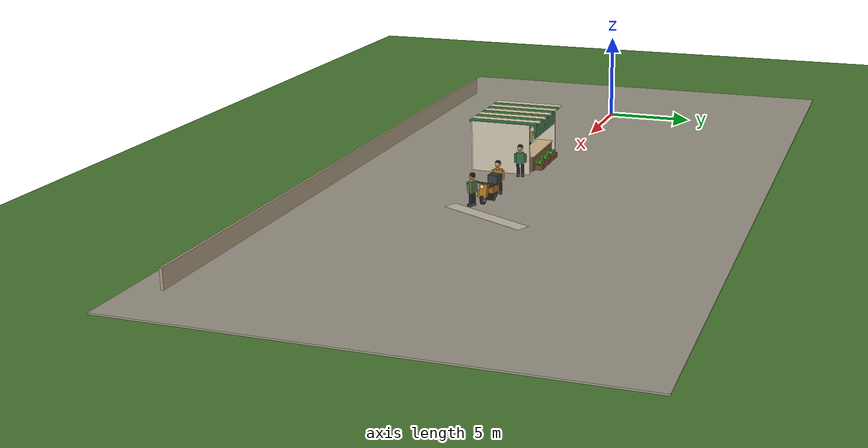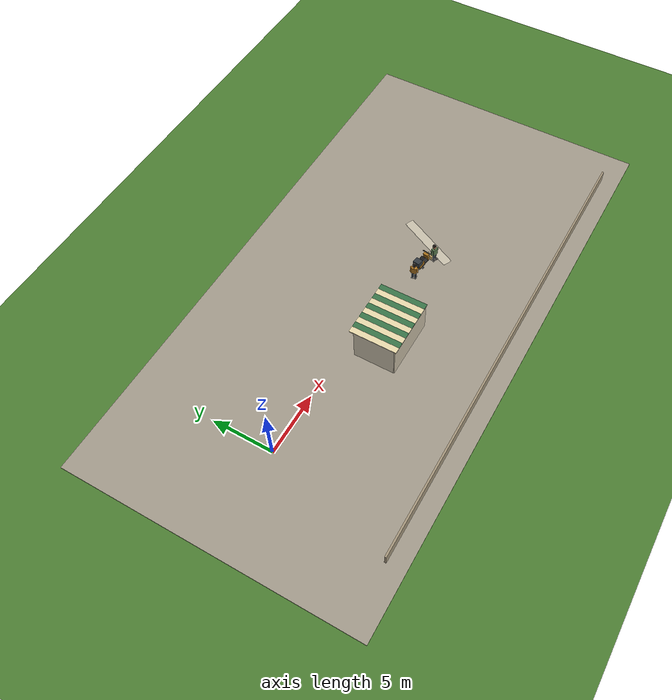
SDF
<sdf version="1.10">
 <world name="swan_town">
  <model name="ground_plane">
   <pose>-14 30 -0.025 0 0 0</pose>
   <static>true</static>
   <link name="link">
    <collision name="collision">
     <geometry><plane><normal>0 0 1</normal><size>100 100</size></plane></geometry>
    </collision>
    <visual name="visual">
     <geometry><plane><normal>0 0 1</normal><size>100 100</size></plane></geometry>
     <material><ambient>0.3 0.5 0.2 1</ambient><diffuse>0.3 0.5 0.2 1</diffuse></material>
    </visual>
   </link>
  </model>
  <model name="ground">
   <static>true</static>
   <pose>15 0 -0.1 0 0 0</pose>
   <link name="body">
    <collision name="box_collision"><geometry><box><size>46 24 0.2</size></box></geometry></collision>
    <visual name="box_visual">
     <geometry><box><size>46 24 0.2</size></box></geometry>
     <material><ambient>0.64 0.61 0.55 1</ambient><diffuse>0.64 0.61 0.55 1</diffuse></material>
    </visual>
   </link>
  </model>
  <model name="market_paving_47">
   <static>true</static>
   <pose>21.75 -0.77782 0.002 0 0 -0.45458</pose>
   <link name="body">
    <visual name="box_visual">
     <geometry><box><size>0.75 5.2 0.004</size></box></geometry>
     <material><ambient>0.79 0.76 0.68 1</ambient><diffuse>0.79 0.76 0.68 1</diffuse></material>
    </visual>
   </link>
  </model>
  <model name="boundary_-1">
   <static>true</static>
   <pose>16 -10.5 0.5 0 0 0</pose>
   <link name="body">
    <collision name="box_collision"><geometry><box><size>38 0.15 1</size></box></geometry></collision>
    <visual name="box_visual">
     <geometry><box><size>38 0.15 1</size></box></geometry>
     <material><ambient>0.65 0.59 0.49 1</ambient><diffuse>0.65 0.59 0.49 1</diffuse></material>
    </visual>
   </link>
  </model>
  <model name="stall_05">
   <static>true</static>
   <pose>12 -2.5575 0 0 0 0</pose>
   <link name="body">
    <collision name="rear_collision">
     <pose>0 -1.65 1.4 0 0 0</pose>
     <geometry><box><size>4.8 0.15 2.8</size></box></geometry>
    </collision>
    <visual name="rear_visual">
     <pose>0 -1.65 1.4 0 0 0</pose>
     <geometry><box><size>4.8 0.15 2.8</size></box></geometry>
     <material><ambient>0.78 0.74 0.65 1</ambient><diffuse>0.78 0.74 0.65 1</diffuse></material>
    </visual>
    <collision name="side_-2.35_collision">
     <pose>-2.35 0 1.4 0 0 0</pose>
     <geometry><box><size>0.12 3.3 2.8</size></box></geometry>
    </collision>
    <visual name="side_-2.35_visual">
     <pose>-2.35 0 1.4 0 0 0</pose>
     <geometry><box><size>0.12 3.3 2.8</size></box></geometry>
     <material><ambient>0.81 0.77 0.69 1</ambient><diffuse>0.81 0.77 0.69 1</diffuse></material>
    </visual>
    <collision name="side_2.35_collision">
     <pose>2.35 0 1.4 0 0 0</pose>
     <geometry><box><size>0.12 3.3 2.8</size></box></geometry>
    </collision>
    <visual name="side_2.35_visual">
     <pose>2.35 0 1.4 0 0 0</pose>
     <geometry><box><size>0.12 3.3 2.8</size></box></geometry>
     <material><ambient>0.81 0.77 0.69 1</ambient><diffuse>0.81 0.77 0.69 1</diffuse></material>
    </visual>
    <collision name="counter_collision">
     <pose>0 1.22 0.4 0 0 0</pose>
     <geometry><box><size>3.5 0.85 0.8</size></box></geometry>
    </collision>
    <visual name="counter_visual">
     <pose>0 1.22 0.4 0 0 0</pose>
     <geometry><box><size>3.5 0.85 0.8</size></box></geometry>
     <material><ambient>0.47 0.32 0.21 1</ambient><diffuse>0.47 0.32 0.21 1</diffuse></material>
    </visual>
    <collision name="counter_top_collision">
     <pose>0 1.22 0.83 0 0 0</pose>
     <geometry><box><size>3.6 0.95 0.06</size></box></geometry>
    </collision>
    <visual name="counter_top_visual">
     <pose>0 1.22 0.83 0 0 0</pose>
     <geometry><box><size>3.6 0.95 0.06</size></box></geometry>
     <material><ambient>0.86 0.77 0.59 1</ambient><diffuse>0.86 0.77 0.59 1</diffuse></material>
    </visual>
    <collision name="awning_0_collision">
     <pose>-2.16 0.1 2.78 0 0 0</pose>
     <geometry><box><size>0.48 3.85 0.1</size></box></geometry>
    </collision>
    <visual name="awning_0_visual">
     <pose>-2.16 0.1 2.78 0 0 0</pose>
     <geometry><box><size>0.48 3.85 0.1</size></box></geometry>
     <material><ambient>0.92 0.86 0.68 1</ambient><diffuse>0.92 0.86 0.68 1</diffuse></material>
    </visual>
    <collision name="awning_1_collision">
     <pose>-1.68 0.1 2.78 0 0 0</pose>
     <geometry><box><size>0.48 3.85 0.1</size></box></geometry>
    </collision>
    <visual name="awning_1_visual">
     <pose>-1.68 0.1 2.78 0 0 0</pose>
     <geometry><box><size>0.48 3.85 0.1</size></box></geometry>
     <material><ambient>0.23 0.46 0.29 1</ambient><diffuse>0.23 0.46 0.29 1</diffuse></material>
    </visual>
    <collision name="awning_2_collision">
     <pose>-1.2 0.1 2.78 0 0 0</pose>
     <geometry><box><size>0.48 3.85 0.1</size></box></geometry>
    </collision>
    <visual name="awning_2_visual">
     <pose>-1.2 0.1 2.78 0 0 0</pose>
     <geometry><box><size>0.48 3.85 0.1</size></box></geometry>
     <material><ambient>0.92 0.86 0.68 1</ambient><diffuse>0.92 0.86 0.68 1</diffuse></material>
    </visual>
    <collision name="awning_3_collision">
     <pose>-0.72 0.1 2.78 0 0 0</pose>
     <geometry><box><size>0.48 3.85 0.1</size></box></geometry>
    </collision>
    <visual name="awning_3_visual">
     <pose>-0.72 0.1 2.78 0 0 0</pose>
     <geometry><box><size>0.48 3.85 0.1</size></box></geometry>
     <material><ambient>0.23 0.46 0.29 1</ambient><diffuse>0.23 0.46 0.29 1</diffuse></material>
    </visual>
    <collision name="awning_4_collision">
     <pose>-0.24 0.1 2.78 0 0 0</pose>
     <geometry><box><size>0.48 3.85 0.1</size></box></geometry>
    </collision>
    <visual name="awning_4_visual">
     <pose>-0.24 0.1 2.78 0 0 0</pose>
     <geometry><box><size>0.48 3.85 0.1</size></box></geometry>
     <material><ambient>0.92 0.86 0.68 1</ambient><diffuse>0.92 0.86 0.68 1</diffuse></material>
    </visual>
    <collision name="awning_5_collision">
     <pose>0.24 0.1 2.78 0 0 0</pose>
     <geometry><box><size>0.48 3.85 0.1</size></box></geometry>
    </collision>
    <visual name="awning_5_visual">
     <pose>0.24 0.1 2.78 0 0 0</pose>
     <geometry><box><size>0.48 3.85 0.1</size></box></geometry>
     <material><ambient>0.23 0.46 0.29 1</ambient><diffuse>0.23 0.46 0.29 1</diffuse></material>
    </visual>
    <collision name="awning_6_collision">
     <pose>0.72 0.1 2.78 0 0 0</pose>
     <geometry><box><size>0.48 3.85 0.1</size></box></geometry>
    </collision>
    <visual name="awning_6_visual">
     <pose>0.72 0.1 2.78 0 0 0</pose>
     <geometry><box><size>0.48 3.85 0.1</size></box></geometry>
     <material><ambient>0.92 0.86 0.68 1</ambient><diffuse>0.92 0.86 0.68 1</diffuse></material>
    </visual>
    <collision name="awning_7_collision">
     <pose>1.2 0.1 2.78 0 0 0</pose>
     <geometry><box><size>0.48 3.85 0.1</size></box></geometry>
    </collision>
    <visual name="awning_7_visual">
     <pose>1.2 0.1 2.78 0 0 0</pose>
     <geometry><box><size>0.48 3.85 0.1</size></box></geometry>
     <material><ambient>0.23 0.46 0.29 1</ambient><diffuse>0.23 0.46 0.29 1</diffuse></material>
    </visual>
    <collision name="awning_8_collision">
     <pose>1.68 0.1 2.78 0 0 0</pose>
     <geometry><box><size>0.48 3.85 0.1</size></box></geometry>
    </collision>
    <visual name="awning_8_visual">
     <pose>1.68 0.1 2.78 0 0 0</pose>
     <geometry><box><size>0.48 3.85 0.1</size></box></geometry>
     <material><ambient>0.92 0.86 0.68 1</ambient><diffuse>0.92 0.86 0.68 1</diffuse></material>
    </visual>
    <collision name="awning_9_collision">
     <pose>2.16 0.1 2.78 0 0 0</pose>
     <geometry><box><size>0.48 3.85 0.1</size></box></geometry>
    </collision>
    <visual name="awning_9_visual">
     <pose>2.16 0.1 2.78 0 0 0</pose>
     <geometry><box><size>0.48 3.85 0.1</size></box></geometry>
     <material><ambient>0.23 0.46 0.29 1</ambient><diffuse>0.23 0.46 0.29 1</diffuse></material>
    </visual>
    <collision name="crate_-1_collision">
     <pose>-1.04 1.77 0.15 0 0 0</pose>
     <geometry><box><size>0.78 0.6 0.3</size></box></geometry>
    </collision>
    <visual name="crate_-1_visual">
     <pose>-1.04 1.77 0.15 0 0 0</pose>
     <geometry><box><size>0.78 0.6 0.3</size></box></geometry>
     <material><ambient>0.4 0.28 0.15 1</ambient><diffuse>0.4 0.28 0.15 1</diffuse></material>
    </visual>
    <visual name="produce_-1_0_visual">
     <pose>-1.25 1.66 0.39 0 0 0</pose>
     <geometry><sphere><radius>0.105</radius></sphere></geometry>
     <material><ambient>0.31 0.58 0.16 1</ambient><diffuse>0.31 0.58 0.16 1</diffuse></material>
    </visual>
    <visual name="produce_-1_1_visual">
     <pose>-1.04 1.66 0.39 0 0 0</pose>
     <geometry><sphere><radius>0.105</radius></sphere></geometry>
     <material><ambient>0.31 0.58 0.16 1</ambient><diffuse>0.31 0.58 0.16 1</diffuse></material>
    </visual>
    <visual name="produce_-1_2_visual">
     <pose>-0.83 1.66 0.39 0 0 0</pose>
     <geometry><sphere><radius>0.105</radius></sphere></geometry>
     <material><ambient>0.31 0.58 0.16 1</ambient><diffuse>0.31 0.58 0.16 1</diffuse></material>
    </visual>
    <visual name="produce_-1_3_visual">
     <pose>-1.25 1.88 0.39 0 0 0</pose>
     <geometry><sphere><radius>0.105</radius></sphere></geometry>
     <material><ambient>0.31 0.58 0.16 1</ambient><diffuse>0.31 0.58 0.16 1</diffuse></material>
    </visual>
    <visual name="produce_-1_4_visual">
     <pose>-1.04 1.88 0.39 0 0 0</pose>
     <geometry><sphere><radius>0.105</radius></sphere></geometry>
     <material><ambient>0.31 0.58 0.16 1</ambient><diffuse>0.31 0.58 0.16 1</diffuse></material>
    </visual>
    <visual name="produce_-1_5_visual">
     <pose>-0.83 1.88 0.39 0 0 0</pose>
     <geometry><sphere><radius>0.105</radius></sphere></geometry>
     <material><ambient>0.31 0.58 0.16 1</ambient><diffuse>0.31 0.58 0.16 1</diffuse></material>
    </visual>
    <collision name="crate_0_collision">
     <pose>0 1.77 0.15 0 0 0</pose>
     <geometry><box><size>0.78 0.6 0.3</size></box></geometry>
    </collision>
    <visual name="crate_0_visual">
     <pose>0 1.77 0.15 0 0 0</pose>
     <geometry><box><size>0.78 0.6 0.3</size></box></geometry>
     <material><ambient>0.4 0.28 0.15 1</ambient><diffuse>0.4 0.28 0.15 1</diffuse></material>
    </visual>
    <visual name="produce_0_0_visual">
     <pose>-0.21 1.66 0.39 0 0 0</pose>
     <geometry><sphere><radius>0.105</radius></sphere></geometry>
     <material><ambient>0.31 0.58 0.16 1</ambient><diffuse>0.31 0.58 0.16 1</diffuse></material>
    </visual>
    <visual name="produce_0_1_visual">
     <pose>0 1.66 0.39 0 0 0</pose>
     <geometry><sphere><radius>0.105</radius></sphere></geometry>
     <material><ambient>0.31 0.58 0.16 1</ambient><diffuse>0.31 0.58 0.16 1</diffuse></material>
    </visual>
    <visual name="produce_0_2_visual">
     <pose>0.21 1.66 0.39 0 0 0</pose>
     <geometry><sphere><radius>0.105</radius></sphere></geometry>
     <material><ambient>0.31 0.58 0.16 1</ambient><diffuse>0.31 0.58 0.16 1</diffuse></material>
    </visual>
    <visual name="produce_0_3_visual">
     <pose>-0.21 1.88 0.39 0 0 0</pose>
     <geometry><sphere><radius>0.105</radius></sphere></geometry>
     <material><ambient>0.31 0.58 0.16 1</ambient><diffuse>0.31 0.58 0.16 1</diffuse></material>
    </visual>
    <visual name="produce_0_4_visual">
     <pose>0 1.88 0.39 0 0 0</pose>
     <geometry><sphere><radius>0.105</radius></sphere></geometry>
     <material><ambient>0.31 0.58 0.16 1</ambient><diffuse>0.31 0.58 0.16 1</diffuse></material>
    </visual>
    <visual name="produce_0_5_visual">
     <pose>0.21 1.88 0.39 0 0 0</pose>
     <geometry><sphere><radius>0.105</radius></sphere></geometry>
     <material><ambient>0.31 0.58 0.16 1</ambient><diffuse>0.31 0.58 0.16 1</diffuse></material>
    </visual>
    <collision name="crate_1_collision">
     <pose>1.04 1.77 0.15 0 0 0</pose>
     <geometry><box><size>0.78 0.6 0.3</size></box></geometry>
    </collision>
    <visual name="crate_1_visual">
     <pose>1.04 1.77 0.15 0 0 0</pose>
     <geometry><box><size>0.78 0.6 0.3</size></box></geometry>
     <material><ambient>0.4 0.28 0.15 1</ambient><diffuse>0.4 0.28 0.15 1</diffuse></material>
    </visual>
    <visual name="produce_1_0_visual">
     <pose>0.83 1.66 0.39 0 0 0</pose>
     <geometry><sphere><radius>0.105</radius></sphere></geometry>
     <material><ambient>0.31 0.58 0.16 1</ambient><diffuse>0.31 0.58 0.16 1</diffuse></material>
    </visual>
    <visual name="produce_1_1_visual">
     <pose>1.04 1.66 0.39 0 0 0</pose>
     <geometry><sphere><radius>0.105</radius></sphere></geometry>
     <material><ambient>0.31 0.58 0.16 1</ambient><diffuse>0.31 0.58 0.16 1</diffuse></material>
    </visual>
    <visual name="produce_1_2_visual">
     <pose>1.25 1.66 0.39 0 0 0</pose>
     <geometry><sphere><radius>0.105</radius></sphere></geometry>
     <material><ambient>0.31 0.58 0.16 1</ambient><diffuse>0.31 0.58 0.16 1</diffuse></material>
    </visual>
    <visual name="produce_1_3_visual">
     <pose>0.83 1.88 0.39 0 0 0</pose>
     <geometry><sphere><radius>0.105</radius></sphere></geometry>
     <material><ambient>0.31 0.58 0.16 1</ambient><diffuse>0.31 0.58 0.16 1</diffuse></material>
    </visual>
    <visual name="produce_1_4_visual">
     <pose>1.04 1.88 0.39 0 0 0</pose>
     <geometry><sphere><radius>0.105</radius></sphere></geometry>
     <material><ambient>0.31 0.58 0.16 1</ambient><diffuse>0.31 0.58 0.16 1</diffuse></material>
    </visual>
    <visual name="produce_1_5_visual">
     <pose>1.25 1.88 0.39 0 0 0</pose>
     <geometry><sphere><radius>0.105</radius></sphere></geometry>
     <material><ambient>0.31 0.58 0.16 1</ambient><diffuse>0.31 0.58 0.16 1</diffuse></material>
    </visual>
   </link>
  </model>
  <model name="signboard_5">
   <static>true</static>
   <pose>12 -0.79747 2.24 0 0 0</pose>
   <link name="body">
    <collision name="box_collision"><geometry><box><size>3.65 0.08 0.72</size></box></geometry></collision>
    <visual name="box_visual">
     <geometry><box><size>3.65 0.08 0.72</size></box></geometry>
     <material><ambient>0.23 0.46 0.29 1</ambient><diffuse>0.23 0.46 0.29 1</diffuse></material>
    </visual>
   </link>
  </model>
  <model name="sign_shop_5">
   <static>true</static>
   <pose>12 -0.74947 2.24 0 0 -3.14158530718</pose>
   <link name="body">
    <visual name="top_visual">
     <pose>0 -0.003 0.32062 0 0 0</pose>
     <geometry><box><size>3.5136 0.003 0.0108</size></box></geometry>
     <material><ambient>1 0.961 0.875 1</ambient><diffuse>1 0.961 0.875 1</diffuse></material>
    </visual>
    <visual name="bottom_visual">
     <pose>0 -0.003 -0.32062 0 0 0</pose>
     <geometry><box><size>3.5136 0.003 0.0108</size></box></geometry>
     <material><ambient>1 0.961 0.875 1</ambient><diffuse>1 0.961 0.875 1</diffuse></material>
    </visual>
    <visual name="left_visual">
     <pose>-1.7568 -0.003 0 0 0 0</pose>
     <geometry><box><size>0.0108 0.003 0.64125</size></box></geometry>
     <material><ambient>1 0.961 0.875 1</ambient><diffuse>1 0.961 0.875 1</diffuse></material>
    </visual>
    <visual name="right_visual">
     <pose>1.7568 -0.003 0 0 0 0</pose>
     <geometry><box><size>0.0108 0.003 0.64125</size></box></geometry>
     <material><ambient>1 0.961 0.875 1</ambient><diffuse>1 0.961 0.875 1</diffuse></material>
    </visual>
    <visual name="ink_0_visual">
     <pose>-0.47813 -0.003 0.14062 0 0 0</pose>
     <geometry><box><size>0.01875 0.003 0.01875</size></box></geometry>
     <material><ambient>1 0.961 0.875 1</ambient><diffuse>1 0.961 0.875 1</diffuse></material>
    </visual>
    <visual name="ink_1_visual">
     <pose>-0.225 -0.003 0.14062 0 0 0</pose>
     <geometry><box><size>0.15 0.003 0.01875</size></box></geometry>
     <material><ambient>1 0.961 0.875 1</ambient><diffuse>1 0.961 0.875 1</diffuse></material>
    </visual>
    <visual name="ink_2_visual">
     <pose>0.09375 -0.003 0.14062 0 0 0</pose>
     <geometry><box><size>0.0375 0.003 0.01875</size></box></geometry>
     <material><ambient>1 0.961 0.875 1</ambient><diffuse>1 0.961 0.875 1</diffuse></material>
    </visual>
    <visual name="ink_3_visual">
     <pose>0.25312 -0.003 0.15 0 0 0</pose>
     <geometry><box><size>0.01875 0.003 0.0375</size></box></geometry>
     <material><ambient>1 0.961 0.875 1</ambient><diffuse>1 0.961 0.875 1</diffuse></material>
    </visual>
    <visual name="ink_4_visual">
     <pose>0.16875 -0.003 0.12188 0 0 0</pose>
     <geometry><box><size>0.1875 0.003 0.01875</size></box></geometry>
     <material><ambient>1 0.961 0.875 1</ambient><diffuse>1 0.961 0.875 1</diffuse></material>
    </visual>
    <visual name="ink_5_visual">
     <pose>-0.10312 -0.003 0.13125 0 0 0</pose>
     <geometry><box><size>0.01875 0.003 0.075</size></box></geometry>
     <material><ambient>1 0.961 0.875 1</ambient><diffuse>1 0.961 0.875 1</diffuse></material>
    </visual>
    <visual name="ink_6_visual">
     <pose>0.14062 -0.003 0.10313 0 0 0</pose>
     <geometry><box><size>0.01875 0.003 0.01875</size></box></geometry>
     <material><ambient>1 0.961 0.875 1</ambient><diffuse>1 0.961 0.875 1</diffuse></material>
    </visual>
    <visual name="ink_7_visual">
     <pose>0.24375 -0.003 0.10313 0 0 0</pose>
     <geometry><box><size>0.0375 0.003 0.01875</size></box></geometry>
     <material><ambient>1 0.961 0.875 1</ambient><diffuse>1 0.961 0.875 1</diffuse></material>
    </visual>
    <visual name="ink_8_visual">
     <pose>0.39375 -0.003 0.12188 0 0 0</pose>
     <geometry><box><size>0.0375 0.003 0.05625</size></box></geometry>
     <material><ambient>1 0.961 0.875 1</ambient><diffuse>1 0.961 0.875 1</diffuse></material>
    </visual>
    <visual name="ink_9_visual">
     <pose>-0.225 -0.003 0.10313 0 0 0</pose>
     <geometry><box><size>0.0375 0.003 0.05625</size></box></geometry>
     <material><ambient>1 0.961 0.875 1</ambient><diffuse>1 0.961 0.875 1</diffuse></material>
    </visual>
    <visual name="ink_10_visual">
     <pose>-0.075 -0.003 0.084375 0 0 0</pose>
     <geometry><box><size>0.075 0.003 0.01875</size></box></geometry>
     <material><ambient>1 0.961 0.875 1</ambient><diffuse>1 0.961 0.875 1</diffuse></material>
    </visual>
    <visual name="ink_11_visual">
     <pose>0.09375 -0.003 0.09375 0 0 0</pose>
     <geometry><box><size>0.0375 0.003 0.0375</size></box></geometry>
     <material><ambient>1 0.961 0.875 1</ambient><diffuse>1 0.961 0.875 1</diffuse></material>
    </visual>
    <visual name="ink_12_visual">
     <pose>0.25312 -0.003 0.084375 0 0 0</pose>
     <geometry><box><size>0.01875 0.003 0.01875</size></box></geometry>
     <material><ambient>1 0.961 0.875 1</ambient><diffuse>1 0.961 0.875 1</diffuse></material>
    </visual>
    <visual name="ink_13_visual">
     <pose>0.40312 -0.003 0.084375 0 0 0</pose>
     <geometry><box><size>0.05625 0.003 0.01875</size></box></geometry>
     <material><ambient>1 0.961 0.875 1</ambient><diffuse>1 0.961 0.875 1</diffuse></material>
    </visual>
    <visual name="ink_14_visual">
     <pose>-0.4875 -0.003 0.09375 0 0 0</pose>
     <geometry><box><size>0.0375 0.003 0.075</size></box></geometry>
     <material><ambient>1 0.961 0.875 1</ambient><diffuse>1 0.961 0.875 1</diffuse></material>
    </visual>
    <visual name="ink_15_visual">
     <pose>-0.225 -0.003 0.065625 0 0 0</pose>
     <geometry><box><size>0.075 0.003 0.01875</size></box></geometry>
     <material><ambient>1 0.961 0.875 1</ambient><diffuse>1 0.961 0.875 1</diffuse></material>
    </visual>
    <visual name="ink_16_visual">
     <pose>0.16875 -0.003 0.065625 0 0 0</pose>
     <geometry><box><size>0.1875 0.003 0.01875</size></box></geometry>
     <material><ambient>1 0.961 0.875 1</ambient><diffuse>1 0.961 0.875 1</diffuse></material>
    </visual>
    <visual name="ink_17_visual">
     <pose>0.375 -0.003 0.065625 0 0 0</pose>
     <geometry><box><size>0.0375 0.003 0.01875</size></box></geometry>
     <material><ambient>1 0.961 0.875 1</ambient><diffuse>1 0.961 0.875 1</diffuse></material>
    </visual>
    <visual name="ink_18_visual">
     <pose>0.43125 -0.003 0.065625 0 0 0</pose>
     <geometry><box><size>0.0375 0.003 0.01875</size></box></geometry>
     <material><ambient>1 0.961 0.875 1</ambient><diffuse>1 0.961 0.875 1</diffuse></material>
    </visual>
    <visual name="ink_19_visual">
     <pose>-0.47813 -0.003 0.046875 0 0 0</pose>
     <geometry><box><size>0.05625 0.003 0.01875</size></box></geometry>
     <material><ambient>1 0.961 0.875 1</ambient><diffuse>1 0.961 0.875 1</diffuse></material>
    </visual>
    <visual name="ink_20_visual">
     <pose>-0.2625 -0.003 0.046875 0 0 0</pose>
     <geometry><box><size>0.0375 0.003 0.01875</size></box></geometry>
     <material><ambient>1 0.961 0.875 1</ambient><diffuse>1 0.961 0.875 1</diffuse></material>
    </visual>
    <visual name="ink_21_visual">
     <pose>-0.17813 -0.003 0.046875 0 0 0</pose>
     <geometry><box><size>0.05625 0.003 0.01875</size></box></geometry>
     <material><ambient>1 0.961 0.875 1</ambient><diffuse>1 0.961 0.875 1</diffuse></material>
    </visual>
    <visual name="ink_22_visual">
     <pose>0.35625 -0.003 0.046875 0 0 0</pose>
     <geometry><box><size>0.0375 0.003 0.01875</size></box></geometry>
     <material><ambient>1 0.961 0.875 1</ambient><diffuse>1 0.961 0.875 1</diffuse></material>
    </visual>
    <visual name="ink_23_visual">
     <pose>0.45 -0.003 0.046875 0 0 0</pose>
     <geometry><box><size>0.0375 0.003 0.01875</size></box></geometry>
     <material><ambient>1 0.961 0.875 1</ambient><diffuse>1 0.961 0.875 1</diffuse></material>
    </visual>
    <visual name="ink_24_visual">
     <pose>-0.45938 -0.003 0.028125 0 0 0</pose>
     <geometry><box><size>0.01875 0.003 0.01875</size></box></geometry>
     <material><ambient>1 0.961 0.875 1</ambient><diffuse>1 0.961 0.875 1</diffuse></material>
    </visual>
    <visual name="ink_25_visual">
     <pose>-0.28125 -0.003 0.028125 0 0 0</pose>
     <geometry><box><size>0.0375 0.003 0.01875</size></box></geometry>
     <material><ambient>1 0.961 0.875 1</ambient><diffuse>1 0.961 0.875 1</diffuse></material>
    </visual>
    <visual name="ink_26_visual">
     <pose>-0.15937 -0.003 0.028125 0 0 0</pose>
     <geometry><box><size>0.01875 0.003 0.01875</size></box></geometry>
     <material><ambient>1 0.961 0.875 1</ambient><diffuse>1 0.961 0.875 1</diffuse></material>
    </visual>
    <visual name="ink_27_visual">
     <pose>0.10313 -0.003 0.028125 0 0 0</pose>
     <geometry><box><size>0.09375 0.003 0.01875</size></box></geometry>
     <material><ambient>1 0.961 0.875 1</ambient><diffuse>1 0.961 0.875 1</diffuse></material>
    </visual>
    <visual name="ink_28_visual">
     <pose>0.23437 -0.003 0.028125 0 0 0</pose>
     <geometry><box><size>0.09375 0.003 0.01875</size></box></geometry>
     <material><ambient>1 0.961 0.875 1</ambient><diffuse>1 0.961 0.875 1</diffuse></material>
    </visual>
    <visual name="ink_29_visual">
     <pose>0.3375 -0.003 0.028125 0 0 0</pose>
     <geometry><box><size>0.0375 0.003 0.01875</size></box></geometry>
     <material><ambient>1 0.961 0.875 1</ambient><diffuse>1 0.961 0.875 1</diffuse></material>
    </visual>
    <visual name="ink_30_visual">
     <pose>0.45937 -0.003 0.028125 0 0 0</pose>
     <geometry><box><size>0.01875 0.003 0.01875</size></box></geometry>
     <material><ambient>1 0.961 0.875 1</ambient><diffuse>1 0.961 0.875 1</diffuse></material>
    </visual>
    <visual name="ink_31_visual">
     <pose>0.525 -0.003 0.09375 0 0 0</pose>
     <geometry><box><size>0.0375 0.003 0.15</size></box></geometry>
     <material><ambient>1 0.961 0.875 1</ambient><diffuse>1 0.961 0.875 1</diffuse></material>
    </visual>
    <visual name="ink_32_visual">
     <pose>-0.50625 -0.003 0.01875 0 0 0</pose>
     <geometry><box><size>0.0375 0.003 0.0375</size></box></geometry>
     <material><ambient>1 0.961 0.875 1</ambient><diffuse>1 0.961 0.875 1</diffuse></material>
    </visual>
    <visual name="ink_33_visual">
     <pose>-0.45 -0.003 0.009375 0 0 0</pose>
     <geometry><box><size>0.0375 0.003 0.01875</size></box></geometry>
     <material><ambient>1 0.961 0.875 1</ambient><diffuse>1 0.961 0.875 1</diffuse></material>
    </visual>
    <visual name="ink_34_visual">
     <pose>-0.10312 -0.003 0.0375 0 0 0</pose>
     <geometry><box><size>0.01875 0.003 0.075</size></box></geometry>
     <material><ambient>1 0.961 0.875 1</ambient><diffuse>1 0.961 0.875 1</diffuse></material>
    </visual>
    <visual name="ink_35_visual">
     <pose>0.17812 -0.003 0.009375 0 0 0</pose>
     <geometry><box><size>0.24375 0.003 0.01875</size></box></geometry>
     <material><ambient>1 0.961 0.875 1</ambient><diffuse>1 0.961 0.875 1</diffuse></material>
    </visual>
    <visual name="ink_36_visual">
     <pose>0.53438 -0.003 0.009375 0 0 0</pose>
     <geometry><box><size>0.01875 0.003 0.01875</size></box></geometry>
     <material><ambient>1 0.961 0.875 1</ambient><diffuse>1 0.961 0.875 1</diffuse></material>
    </visual>
    <visual name="ink_37_visual">
     <pose>-0.525 -0.003 -0.009375 0 0 0</pose>
     <geometry><box><size>0.0375 0.003 0.01875</size></box></geometry>
     <material><ambient>1 0.961 0.875 1</ambient><diffuse>1 0.961 0.875 1</diffuse></material>
    </visual>
    <visual name="ink_38_visual">
     <pose>-0.43125 -0.003 -0.009375 0 0 0</pose>
     <geometry><box><size>0.0375 0.003 0.01875</size></box></geometry>
     <material><ambient>1 0.961 0.875 1</ambient><diffuse>1 0.961 0.875 1</diffuse></material>
    </visual>
    <visual name="ink_39_visual">
     <pose>-0.17813 -0.003 -0.009375 0 0 0</pose>
     <geometry><box><size>0.13125 0.003 0.01875</size></box></geometry>
     <material><ambient>1 0.961 0.875 1</ambient><diffuse>1 0.961 0.875 1</diffuse></material>
    </visual>
    <visual name="ink_40_visual">
     <pose>0.44063 -0.003 -0.009375 0 0 0</pose>
     <geometry><box><size>0.16875 0.003 0.01875</size></box></geometry>
     <material><ambient>1 0.961 0.875 1</ambient><diffuse>1 0.961 0.875 1</diffuse></material>
    </visual>
    <visual name="ink_41_visual">
     <pose>-0.54375 -0.003 -0.028125 0 0 0</pose>
     <geometry><box><size>0.0375 0.003 0.01875</size></box></geometry>
     <material><ambient>1 0.961 0.875 1</ambient><diffuse>1 0.961 0.875 1</diffuse></material>
    </visual>
    <visual name="ink_42_visual">
     <pose>-0.42188 -0.003 -0.028125 0 0 0</pose>
     <geometry><box><size>0.01875 0.003 0.01875</size></box></geometry>
     <material><ambient>1 0.961 0.875 1</ambient><diffuse>1 0.961 0.875 1</diffuse></material>
    </visual>
    <visual name="ink_43_visual">
     <pose>-0.24375 -0.003 -0.028125 0 0 0</pose>
     <geometry><box><size>0.0375 0.003 0.01875</size></box></geometry>
     <material><ambient>1 0.961 0.875 1</ambient><diffuse>1 0.961 0.875 1</diffuse></material>
    </visual>
    <visual name="ink_44_visual">
     <pose>-0.1125 -0.003 -0.028125 0 0 0</pose>
     <geometry><box><size>0.0375 0.003 0.01875</size></box></geometry>
     <material><ambient>1 0.961 0.875 1</ambient><diffuse>1 0.961 0.875 1</diffuse></material>
    </visual>
    <visual name="ink_45_visual">
     <pose>0.16875 -0.003 -0.01875 0 0 0</pose>
     <geometry><box><size>0.0375 0.003 0.0375</size></box></geometry>
     <material><ambient>1 0.961 0.875 1</ambient><diffuse>1 0.961 0.875 1</diffuse></material>
    </visual>
    <visual name="ink_46_visual">
     <pose>0.45 -0.003 -0.028125 0 0 0</pose>
     <geometry><box><size>0.1875 0.003 0.01875</size></box></geometry>
     <material><ambient>1 0.961 0.875 1</ambient><diffuse>1 0.961 0.875 1</diffuse></material>
    </visual>
    <visual name="ink_47_visual">
     <pose>-0.25312 -0.003 -0.046875 0 0 0</pose>
     <geometry><box><size>0.01875 0.003 0.01875</size></box></geometry>
     <material><ambient>1 0.961 0.875 1</ambient><diffuse>1 0.961 0.875 1</diffuse></material>
    </visual>
    <visual name="ink_48_visual">
     <pose>-0.09375 -0.003 -0.046875 0 0 0</pose>
     <geometry><box><size>0.0375 0.003 0.01875</size></box></geometry>
     <material><ambient>1 0.961 0.875 1</ambient><diffuse>1 0.961 0.875 1</diffuse></material>
    </visual>
    <visual name="ink_49_visual">
     <pose>-0.24375 -0.003 -0.065625 0 0 0</pose>
     <geometry><box><size>0.0375 0.003 0.01875</size></box></geometry>
     <material><ambient>1 0.961 0.875 1</ambient><diffuse>1 0.961 0.875 1</diffuse></material>
    </visual>
    <visual name="ink_50_visual">
     <pose>-0.10312 -0.003 -0.065625 0 0 0</pose>
     <geometry><box><size>0.01875 0.003 0.01875</size></box></geometry>
     <material><ambient>1 0.961 0.875 1</ambient><diffuse>1 0.961 0.875 1</diffuse></material>
    </visual>
    <visual name="ink_51_visual">
     <pose>0.09375 -0.003 -0.046875 0 0 0</pose>
     <geometry><box><size>0.0375 0.003 0.05625</size></box></geometry>
     <material><ambient>1 0.961 0.875 1</ambient><diffuse>1 0.961 0.875 1</diffuse></material>
    </visual>
    <visual name="ink_52_visual">
     <pose>-0.35625 -0.003 0.0375 0 0 0</pose>
     <geometry><box><size>0.0375 0.003 0.2625</size></box></geometry>
     <material><ambient>1 0.961 0.875 1</ambient><diffuse>1 0.961 0.875 1</diffuse></material>
    </visual>
    <visual name="ink_53_visual">
     <pose>-0.16875 -0.003 -0.084375 0 0 0</pose>
     <geometry><box><size>0.15 0.003 0.01875</size></box></geometry>
     <material><ambient>1 0.961 0.875 1</ambient><diffuse>1 0.961 0.875 1</diffuse></material>
    </visual>
    <visual name="ink_54_visual">
     <pose>0.16875 -0.003 -0.084375 0 0 0</pose>
     <geometry><box><size>0.1875 0.003 0.01875</size></box></geometry>
     <material><ambient>1 0.961 0.875 1</ambient><diffuse>1 0.961 0.875 1</diffuse></material>
    </visual>
    <visual name="ink_55_visual">
     <pose>0.525 -0.003 -0.065625 0 0 0</pose>
     <geometry><box><size>0.0375 0.003 0.05625</size></box></geometry>
     <material><ambient>1 0.961 0.875 1</ambient><diffuse>1 0.961 0.875 1</diffuse></material>
    </visual>
    <visual name="ink_56_visual">
     <pose>-0.34688 -0.003 -0.10313 0 0 0</pose>
     <geometry><box><size>0.01875 0.003 0.01875</size></box></geometry>
     <material><ambient>1 0.961 0.875 1</ambient><diffuse>1 0.961 0.875 1</diffuse></material>
    </visual>
    <visual name="ink_57_visual">
     <pose>-0.17813 -0.003 -0.10313 0 0 0</pose>
     <geometry><box><size>0.05625 0.003 0.01875</size></box></geometry>
     <material><ambient>1 0.961 0.875 1</ambient><diffuse>1 0.961 0.875 1</diffuse></material>
    </visual>
   </link>
  </model>
  <model name="shopper_grocery">
   <static>true</static>
   <pose>20.405 -1.9859 0 0 0 -1.9395</pose>
   <link name="body">
    <collision name="leg_-1_collision">
     <pose>0 -0.12 0.4 0 0 0</pose>
     <geometry><cylinder><radius>0.085</radius><length>0.68</length></cylinder></geometry>
    </collision>
    <visual name="leg_-1_visual">
     <pose>0 -0.12 0.4 0 0 0</pose>
     <geometry><cylinder><radius>0.085</radius><length>0.68</length></cylinder></geometry>
     <material><ambient>0.12 0.15 0.18 1</ambient><diffuse>0.12 0.15 0.18 1</diffuse></material>
    </visual>
    <collision name="shoe_-1_collision">
     <pose>0.06 -0.12 0.055 0 0 0</pose>
     <geometry><box><size>0.28 0.17 0.11</size></box></geometry>
    </collision>
    <visual name="shoe_-1_visual">
     <pose>0.06 -0.12 0.055 0 0 0</pose>
     <geometry><box><size>0.28 0.17 0.11</size></box></geometry>
     <material><ambient>0.08 0.07 0.06 1</ambient><diffuse>0.08 0.07 0.06 1</diffuse></material>
    </visual>
    <collision name="arm_-1_collision">
     <pose>0.02 -0.27 1.02 0 -0.12 0</pose>
     <geometry><cylinder><radius>0.068</radius><length>0.48</length></cylinder></geometry>
    </collision>
    <visual name="arm_-1_visual">
     <pose>0.02 -0.27 1.02 0 -0.12 0</pose>
     <geometry><cylinder><radius>0.068</radius><length>0.48</length></cylinder></geometry>
     <material><ambient>0.36 0.48 0.31 1</ambient><diffuse>0.36 0.48 0.31 1</diffuse></material>
    </visual>
    <collision name="leg_1_collision">
     <pose>0 0.12 0.4 0 0 0</pose>
     <geometry><cylinder><radius>0.085</radius><length>0.68</length></cylinder></geometry>
    </collision>
    <visual name="leg_1_visual">
     <pose>0 0.12 0.4 0 0 0</pose>
     <geometry><cylinder><radius>0.085</radius><length>0.68</length></cylinder></geometry>
     <material><ambient>0.12 0.15 0.18 1</ambient><diffuse>0.12 0.15 0.18 1</diffuse></material>
    </visual>
    <collision name="shoe_1_collision">
     <pose>0.06 0.12 0.055 0 0 0</pose>
     <geometry><box><size>0.28 0.17 0.11</size></box></geometry>
    </collision>
    <visual name="shoe_1_visual">
     <pose>0.06 0.12 0.055 0 0 0</pose>
     <geometry><box><size>0.28 0.17 0.11</size></box></geometry>
     <material><ambient>0.08 0.07 0.06 1</ambient><diffuse>0.08 0.07 0.06 1</diffuse></material>
    </visual>
    <collision name="arm_1_collision">
     <pose>0.02 0.27 1.02 0 0.12 0</pose>
     <geometry><cylinder><radius>0.068</radius><length>0.48</length></cylinder></geometry>
    </collision>
    <visual name="arm_1_visual">
     <pose>0.02 0.27 1.02 0 0.12 0</pose>
     <geometry><cylinder><radius>0.068</radius><length>0.48</length></cylinder></geometry>
     <material><ambient>0.36 0.48 0.31 1</ambient><diffuse>0.36 0.48 0.31 1</diffuse></material>
    </visual>
    <collision name="torso_collision">
     <pose>0 0 1.02 0 0 0</pose>
     <geometry><box><size>0.3 0.43 0.58</size></box></geometry>
    </collision>
    <visual name="torso_visual">
     <pose>0 0 1.02 0 0 0</pose>
     <geometry><box><size>0.3 0.43 0.58</size></box></geometry>
     <material><ambient>0.36 0.48 0.31 1</ambient><diffuse>0.36 0.48 0.31 1</diffuse></material>
    </visual>
    <visual name="neck_visual">
     <pose>0 0 1.37 0 0 0</pose>
     <geometry><cylinder><radius>0.07</radius><length>0.13</length></cylinder></geometry>
     <material><ambient>0.77 0.56 0.4 1</ambient><diffuse>0.77 0.56 0.4 1</diffuse></material>
    </visual>
    <collision name="head_collision">
     <pose>0 0 1.57 0 0 0</pose>
     <geometry><sphere><radius>0.16</radius></sphere></geometry>
    </collision>
    <visual name="head_visual">
     <pose>0 0 1.57 0 0 0</pose>
     <geometry><sphere><radius>0.16</radius></sphere></geometry>
     <material><ambient>0.77 0.56 0.4 1</ambient><diffuse>0.77 0.56 0.4 1</diffuse></material>
    </visual>
    <visual name="hair_visual">
     <pose>-0.025 0 1.63 0 0 0</pose>
     <geometry><sphere><radius>0.155</radius></sphere></geometry>
     <material><ambient>0.1 0.08 0.06 1</ambient><diffuse>0.1 0.08 0.06 1</diffuse></material>
    </visual>
    <collision name="shopping_bag_collision">
     <pose>0.04 -0.38 0.6 0 0 0</pose>
     <geometry><box><size>0.24 0.17 0.33</size></box></geometry>
    </collision>
    <visual name="shopping_bag_visual">
     <pose>0.04 -0.38 0.6 0 0 0</pose>
     <geometry><box><size>0.24 0.17 0.33</size></box></geometry>
     <material><ambient>0.78 0.65 0.39 1</ambient><diffuse>0.78 0.65 0.39 1</diffuse></material>
    </visual>
   </link>
  </model>
  <model name="vendor_1">
   <static>true</static>
   <pose>10.396 -2.2584 0 0 0 1.2021</pose>
   <link name="body">
    <collision name="leg_-1_collision">
     <pose>0 -0.12 0.4 0 0 0</pose>
     <geometry><cylinder><radius>0.085</radius><length>0.68</length></cylinder></geometry>
    </collision>
    <visual name="leg_-1_visual">
     <pose>0 -0.12 0.4 0 0 0</pose>
     <geometry><cylinder><radius>0.085</radius><length>0.68</length></cylinder></geometry>
     <material><ambient>0.12 0.15 0.18 1</ambient><diffuse>0.12 0.15 0.18 1</diffuse></material>
    </visual>
    <collision name="shoe_-1_collision">
     <pose>0.06 -0.12 0.055 0 0 0</pose>
     <geometry><box><size>0.28 0.17 0.11</size></box></geometry>
    </collision>
    <visual name="shoe_-1_visual">
     <pose>0.06 -0.12 0.055 0 0 0</pose>
     <geometry><box><size>0.28 0.17 0.11</size></box></geometry>
     <material><ambient>0.08 0.07 0.06 1</ambient><diffuse>0.08 0.07 0.06 1</diffuse></material>
    </visual>
    <collision name="arm_-1_collision">
     <pose>0.02 -0.27 1.02 0 -0.12 0</pose>
     <geometry><cylinder><radius>0.068</radius><length>0.48</length></cylinder></geometry>
    </collision>
    <visual name="arm_-1_visual">
     <pose>0.02 -0.27 1.02 0 -0.12 0</pose>
     <geometry><cylinder><radius>0.068</radius><length>0.48</length></cylinder></geometry>
     <material><ambient>0.79 0.69 0.48 1</ambient><diffuse>0.79 0.69 0.48 1</diffuse></material>
    </visual>
    <collision name="leg_1_collision">
     <pose>0 0.12 0.4 0 0 0</pose>
     <geometry><cylinder><radius>0.085</radius><length>0.68</length></cylinder></geometry>
    </collision>
    <visual name="leg_1_visual">
     <pose>0 0.12 0.4 0 0 0</pose>
     <geometry><cylinder><radius>0.085</radius><length>0.68</length></cylinder></geometry>
     <material><ambient>0.12 0.15 0.18 1</ambient><diffuse>0.12 0.15 0.18 1</diffuse></material>
    </visual>
    <collision name="shoe_1_collision">
     <pose>0.06 0.12 0.055 0 0 0</pose>
     <geometry><box><size>0.28 0.17 0.11</size></box></geometry>
    </collision>
    <visual name="shoe_1_visual">
     <pose>0.06 0.12 0.055 0 0 0</pose>
     <geometry><box><size>0.28 0.17 0.11</size></box></geometry>
     <material><ambient>0.08 0.07 0.06 1</ambient><diffuse>0.08 0.07 0.06 1</diffuse></material>
    </visual>
    <collision name="arm_1_collision">
     <pose>0.02 0.27 1.02 0 0.12 0</pose>
     <geometry><cylinder><radius>0.068</radius><length>0.48</length></cylinder></geometry>
    </collision>
    <visual name="arm_1_visual">
     <pose>0.02 0.27 1.02 0 0.12 0</pose>
     <geometry><cylinder><radius>0.068</radius><length>0.48</length></cylinder></geometry>
     <material><ambient>0.79 0.69 0.48 1</ambient><diffuse>0.79 0.69 0.48 1</diffuse></material>
    </visual>
    <collision name="torso_collision">
     <pose>0 0 1.02 0 0 0</pose>
     <geometry><box><size>0.3 0.43 0.58</size></box></geometry>
    </collision>
    <visual name="torso_visual">
     <pose>0 0 1.02 0 0 0</pose>
     <geometry><box><size>0.3 0.43 0.58</size></box></geometry>
     <material><ambient>0.79 0.69 0.48 1</ambient><diffuse>0.79 0.69 0.48 1</diffuse></material>
    </visual>
    <visual name="neck_visual">
     <pose>0 0 1.37 0 0 0</pose>
     <geometry><cylinder><radius>0.07</radius><length>0.13</length></cylinder></geometry>
     <material><ambient>0.77 0.56 0.4 1</ambient><diffuse>0.77 0.56 0.4 1</diffuse></material>
    </visual>
    <collision name="head_collision">
     <pose>0 0 1.57 0 0 0</pose>
     <geometry><sphere><radius>0.16</radius></sphere></geometry>
    </collision>
    <visual name="head_visual">
     <pose>0 0 1.57 0 0 0</pose>
     <geometry><sphere><radius>0.16</radius></sphere></geometry>
     <material><ambient>0.77 0.56 0.4 1</ambient><diffuse>0.77 0.56 0.4 1</diffuse></material>
    </visual>
    <visual name="hair_visual">
     <pose>-0.025 0 1.63 0 0 0</pose>
     <geometry><sphere><radius>0.155</radius></sphere></geometry>
     <material><ambient>0.1 0.08 0.06 1</ambient><diffuse>0.1 0.08 0.06 1</diffuse></material>
    </visual>
   </link>
  </model>
  <model name="crowd_05">
   <static>true</static>
   <pose>14.744 -1.3209 0 0 0 0.27667</pose>
   <link name="body">
    <collision name="leg_-1_collision">
     <pose>0 -0.12 0.4 0 0 0</pose>
     <geometry><cylinder><radius>0.085</radius><length>0.68</length></cylinder></geometry>
    </collision>
    <visual name="leg_-1_visual">
     <pose>0 -0.12 0.4 0 0 0</pose>
     <geometry><cylinder><radius>0.085</radius><length>0.68</length></cylinder></geometry>
     <material><ambient>0.12 0.15 0.18 1</ambient><diffuse>0.12 0.15 0.18 1</diffuse></material>
    </visual>
    <collision name="shoe_-1_collision">
     <pose>0.06 -0.12 0.055 0 0 0</pose>
     <geometry><box><size>0.28 0.17 0.11</size></box></geometry>
    </collision>
    <visual name="shoe_-1_visual">
     <pose>0.06 -0.12 0.055 0 0 0</pose>
     <geometry><box><size>0.28 0.17 0.11</size></box></geometry>
     <material><ambient>0.08 0.07 0.06 1</ambient><diffuse>0.08 0.07 0.06 1</diffuse></material>
    </visual>
    <collision name="arm_-1_collision">
     <pose>0.02 -0.27 1.02 0 -0.12 0</pose>
     <geometry><cylinder><radius>0.068</radius><length>0.48</length></cylinder></geometry>
    </collision>
    <visual name="arm_-1_visual">
     <pose>0.02 -0.27 1.02 0 -0.12 0</pose>
     <geometry><cylinder><radius>0.068</radius><length>0.48</length></cylinder></geometry>
     <material><ambient>0.23 0.46 0.29 1</ambient><diffuse>0.23 0.46 0.29 1</diffuse></material>
    </visual>
    <collision name="leg_1_collision">
     <pose>0 0.12 0.4 0 0 0</pose>
     <geometry><cylinder><radius>0.085</radius><length>0.68</length></cylinder></geometry>
    </collision>
    <visual name="leg_1_visual">
     <pose>0 0.12 0.4 0 0 0</pose>
     <geometry><cylinder><radius>0.085</radius><length>0.68</length></cylinder></geometry>
     <material><ambient>0.12 0.15 0.18 1</ambient><diffuse>0.12 0.15 0.18 1</diffuse></material>
    </visual>
    <collision name="shoe_1_collision">
     <pose>0.06 0.12 0.055 0 0 0</pose>
     <geometry><box><size>0.28 0.17 0.11</size></box></geometry>
    </collision>
    <visual name="shoe_1_visual">
     <pose>0.06 0.12 0.055 0 0 0</pose>
     <geometry><box><size>0.28 0.17 0.11</size></box></geometry>
     <material><ambient>0.08 0.07 0.06 1</ambient><diffuse>0.08 0.07 0.06 1</diffuse></material>
    </visual>
    <collision name="arm_1_collision">
     <pose>0.02 0.27 1.02 0 0.12 0</pose>
     <geometry><cylinder><radius>0.068</radius><length>0.48</length></cylinder></geometry>
    </collision>
    <visual name="arm_1_visual">
     <pose>0.02 0.27 1.02 0 0.12 0</pose>
     <geometry><cylinder><radius>0.068</radius><length>0.48</length></cylinder></geometry>
     <material><ambient>0.23 0.46 0.29 1</ambient><diffuse>0.23 0.46 0.29 1</diffuse></material>
    </visual>
    <collision name="torso_collision">
     <pose>0 0 1.02 0 0 0</pose>
     <geometry><box><size>0.3 0.43 0.58</size></box></geometry>
    </collision>
    <visual name="torso_visual">
     <pose>0 0 1.02 0 0 0</pose>
     <geometry><box><size>0.3 0.43 0.58</size></box></geometry>
     <material><ambient>0.23 0.46 0.29 1</ambient><diffuse>0.23 0.46 0.29 1</diffuse></material>
    </visual>
    <visual name="neck_visual">
     <pose>0 0 1.37 0 0 0</pose>
     <geometry><cylinder><radius>0.07</radius><length>0.13</length></cylinder></geometry>
     <material><ambient>0.77 0.56 0.4 1</ambient><diffuse>0.77 0.56 0.4 1</diffuse></material>
    </visual>
    <collision name="head_collision">
     <pose>0 0 1.57 0 0 0</pose>
     <geometry><sphere><radius>0.16</radius></sphere></geometry>
    </collision>
    <visual name="head_visual">
     <pose>0 0 1.57 0 0 0</pose>
     <geometry><sphere><radius>0.16</radius></sphere></geometry>
     <material><ambient>0.77 0.56 0.4 1</ambient><diffuse>0.77 0.56 0.4 1</diffuse></material>
    </visual>
    <visual name="hair_visual">
     <pose>-0.025 0 1.63 0 0 0</pose>
     <geometry><sphere><radius>0.155</radius></sphere></geometry>
     <material><ambient>0.1 0.08 0.06 1</ambient><diffuse>0.1 0.08 0.06 1</diffuse></material>
    </visual>
   </link>
  </model>
  <model name="crowd_07">
   <static>true</static>
   <pose>18 -1.45 0 0 0 0.2</pose>
   <link name="body">
    <collision name="leg_-1_collision">
     <pose>0 -0.12 0.4 0 0 0</pose>
     <geometry><cylinder><radius>0.085</radius><length>0.68</length></cylinder></geometry>
    </collision>
    <visual name="leg_-1_visual">
     <pose>0 -0.12 0.4 0 0 0</pose>
     <geometry><cylinder><radius>0.085</radius><length>0.68</length></cylinder></geometry>
     <material><ambient>0.12 0.15 0.18 1</ambient><diffuse>0.12 0.15 0.18 1</diffuse></material>
    </visual>
    <collision name="shoe_-1_collision">
     <pose>0.06 -0.12 0.055 0 0 0</pose>
     <geometry><box><size>0.28 0.17 0.11</size></box></geometry>
    </collision>
    <visual name="shoe_-1_visual">
     <pose>0.06 -0.12 0.055 0 0 0</pose>
     <geometry><box><size>0.28 0.17 0.11</size></box></geometry>
     <material><ambient>0.08 0.07 0.06 1</ambient><diffuse>0.08 0.07 0.06 1</diffuse></material>
    </visual>
    <collision name="arm_-1_collision">
     <pose>0.02 -0.27 1.02 0 -0.12 0</pose>
     <geometry><cylinder><radius>0.068</radius><length>0.48</length></cylinder></geometry>
    </collision>
    <visual name="arm_-1_visual">
     <pose>0.02 -0.27 1.02 0 -0.12 0</pose>
     <geometry><cylinder><radius>0.068</radius><length>0.48</length></cylinder></geometry>
     <material><ambient>0.72 0.49 0.15 1</ambient><diffuse>0.72 0.49 0.15 1</diffuse></material>
    </visual>
    <collision name="leg_1_collision">
     <pose>0 0.12 0.4 0 0 0</pose>
     <geometry><cylinder><radius>0.085</radius><length>0.68</length></cylinder></geometry>
    </collision>
    <visual name="leg_1_visual">
     <pose>0 0.12 0.4 0 0 0</pose>
     <geometry><cylinder><radius>0.085</radius><length>0.68</length></cylinder></geometry>
     <material><ambient>0.12 0.15 0.18 1</ambient><diffuse>0.12 0.15 0.18 1</diffuse></material>
    </visual>
    <collision name="shoe_1_collision">
     <pose>0.06 0.12 0.055 0 0 0</pose>
     <geometry><box><size>0.28 0.17 0.11</size></box></geometry>
    </collision>
    <visual name="shoe_1_visual">
     <pose>0.06 0.12 0.055 0 0 0</pose>
     <geometry><box><size>0.28 0.17 0.11</size></box></geometry>
     <material><ambient>0.08 0.07 0.06 1</ambient><diffuse>0.08 0.07 0.06 1</diffuse></material>
    </visual>
    <collision name="arm_1_collision">
     <pose>0.02 0.27 1.02 0 0.12 0</pose>
     <geometry><cylinder><radius>0.068</radius><length>0.48</length></cylinder></geometry>
    </collision>
    <visual name="arm_1_visual">
     <pose>0.02 0.27 1.02 0 0.12 0</pose>
     <geometry><cylinder><radius>0.068</radius><length>0.48</length></cylinder></geometry>
     <material><ambient>0.72 0.49 0.15 1</ambient><diffuse>0.72 0.49 0.15 1</diffuse></material>
    </visual>
    <collision name="torso_collision">
     <pose>0 0 1.02 0 0 0</pose>
     <geometry><box><size>0.3 0.43 0.58</size></box></geometry>
    </collision>
    <visual name="torso_visual">
     <pose>0 0 1.02 0 0 0</pose>
     <geometry><box><size>0.3 0.43 0.58</size></box></geometry>
     <material><ambient>0.72 0.49 0.15 1</ambient><diffuse>0.72 0.49 0.15 1</diffuse></material>
    </visual>
    <visual name="neck_visual">
     <pose>0 0 1.37 0 0 0</pose>
     <geometry><cylinder><radius>0.07</radius><length>0.13</length></cylinder></geometry>
     <material><ambient>0.77 0.56 0.4 1</ambient><diffuse>0.77 0.56 0.4 1</diffuse></material>
    </visual>
    <collision name="head_collision">
     <pose>0 0 1.57 0 0 0</pose>
     <geometry><sphere><radius>0.16</radius></sphere></geometry>
    </collision>
    <visual name="head_visual">
     <pose>0 0 1.57 0 0 0</pose>
     <geometry><sphere><radius>0.16</radius></sphere></geometry>
     <material><ambient>0.77 0.56 0.4 1</ambient><diffuse>0.77 0.56 0.4 1</diffuse></material>
    </visual>
    <visual name="hair_visual">
     <pose>-0.025 0 1.63 0 0 0</pose>
     <geometry><sphere><radius>0.155</radius></sphere></geometry>
     <material><ambient>0.1 0.08 0.06 1</ambient><diffuse>0.1 0.08 0.06 1</diffuse></material>
    </visual>
   </link>
  </model>
  <model name="motorcycle_unloading">
   <static>true</static>
   <pose>19.404 -1.4645 0 0 0 -0.14026</pose>
   <link name="body">
    <collision name="tire_0_collision">
     <pose>-0.61 0 0.25 1.5708 0 0</pose>
     <geometry><cylinder><radius>0.25</radius><length>0.14</length></cylinder></geometry>
    </collision>
    <visual name="tire_0_visual">
     <pose>-0.61 0 0.25 1.5708 0 0</pose>
     <geometry><cylinder><radius>0.25</radius><length>0.14</length></cylinder></geometry>
     <material><ambient>0.075 0.075 0.07 1</ambient><diffuse>0.075 0.075 0.07 1</diffuse></material>
    </visual>
    <visual name="hub_0_visual">
     <pose>-0.61 0 0.25 1.5708 0 0</pose>
     <geometry><cylinder><radius>0.13</radius><length>0.145</length></cylinder></geometry>
     <material><ambient>0.57 0.59 0.6 1</ambient><diffuse>0.57 0.59 0.6 1</diffuse></material>
    </visual>
    <collision name="tire_1_collision">
     <pose>0.62 0 0.25 1.5708 0 0</pose>
     <geometry><cylinder><radius>0.25</radius><length>0.14</length></cylinder></geometry>
    </collision>
    <visual name="tire_1_visual">
     <pose>0.62 0 0.25 1.5708 0 0</pose>
     <geometry><cylinder><radius>0.25</radius><length>0.14</length></cylinder></geometry>
     <material><ambient>0.075 0.075 0.07 1</ambient><diffuse>0.075 0.075 0.07 1</diffuse></material>
    </visual>
    <visual name="hub_1_visual">
     <pose>0.62 0 0.25 1.5708 0 0</pose>
     <geometry><cylinder><radius>0.13</radius><length>0.145</length></cylinder></geometry>
     <material><ambient>0.57 0.59 0.6 1</ambient><diffuse>0.57 0.59 0.6 1</diffuse></material>
    </visual>
    <collision name="deck_collision">
     <pose>0 0 0.33 0 0 0</pose>
     <geometry><box><size>1.2 0.43 0.17</size></box></geometry>
    </collision>
    <visual name="deck_visual">
     <pose>0 0 0.33 0 0 0</pose>
     <geometry><box><size>1.2 0.43 0.17</size></box></geometry>
     <material><ambient>0.18 0.18 0.18 1</ambient><diffuse>0.18 0.18 0.18 1</diffuse></material>
    </visual>
    <collision name="rear_body_collision">
     <pose>-0.36 0 0.59 0 0 0</pose>
     <geometry><box><size>0.65 0.46 0.4</size></box></geometry>
    </collision>
    <visual name="rear_body_visual">
     <pose>-0.36 0 0.59 0 0 0</pose>
     <geometry><box><size>0.65 0.46 0.4</size></box></geometry>
     <material><ambient>0.64 0.43 0.1 1</ambient><diffuse>0.64 0.43 0.1 1</diffuse></material>
    </visual>
    <collision name="seat_collision">
     <pose>-0.2 0 0.83 0 0 0</pose>
     <geometry><box><size>0.8 0.4 0.12</size></box></geometry>
    </collision>
    <visual name="seat_visual">
     <pose>-0.2 0 0.83 0 0 0</pose>
     <geometry><box><size>0.8 0.4 0.12</size></box></geometry>
     <material><ambient>0.1 0.1 0.1 1</ambient><diffuse>0.1 0.1 0.1 1</diffuse></material>
    </visual>
    <collision name="front_fairing_collision">
     <pose>0.53 0 0.69 0 -0.2 0</pose>
     <geometry><box><size>0.23 0.43 0.69</size></box></geometry>
    </collision>
    <visual name="front_fairing_visual">
     <pose>0.53 0 0.69 0 -0.2 0</pose>
     <geometry><box><size>0.23 0.43 0.69</size></box></geometry>
     <material><ambient>0.64 0.43 0.1 1</ambient><diffuse>0.64 0.43 0.1 1</diffuse></material>
    </visual>
    <collision name="handlebar_collision">
     <pose>0.56 0 1.12 1.5708 0 0</pose>
     <geometry><cylinder><radius>0.035</radius><length>0.72</length></cylinder></geometry>
    </collision>
    <visual name="handlebar_visual">
     <pose>0.56 0 1.12 1.5708 0 0</pose>
     <geometry><cylinder><radius>0.035</radius><length>0.72</length></cylinder></geometry>
     <material><ambient>0.18 0.18 0.18 1</ambient><diffuse>0.18 0.18 0.18 1</diffuse></material>
    </visual>
    <visual name="headlight_visual">
     <pose>0.7 0 0.94 0 0 0</pose>
     <geometry><sphere><radius>0.095</radius></sphere></geometry>
     <material><ambient>0.96 0.92 0.66 1</ambient><diffuse>0.96 0.92 0.66 1</diffuse></material>
    </visual>
    <collision name="delivery_box_collision">
     <pose>-0.65 0 1.01 0 0 0</pose>
     <geometry><box><size>0.51 0.55 0.48</size></box></geometry>
    </collision>
    <visual name="delivery_box_visual">
     <pose>-0.65 0 1.01 0 0 0</pose>
     <geometry><box><size>0.51 0.55 0.48</size></box></geometry>
     <material><ambient>0.2 0.23 0.25 1</ambient><diffuse>0.2 0.23 0.25 1</diffuse></material>
    </visual>
    <collision name="stand_collision">
     <pose>-0.2 0 0.1 0 0 0</pose>
     <geometry><box><size>0.12 0.5 0.2</size></box></geometry>
    </collision>
    <visual name="stand_visual">
     <pose>-0.2 0 0.1 0 0 0</pose>
     <geometry><box><size>0.12 0.5 0.2</size></box></geometry>
     <material><ambient>0.12 0.12 0.12 1</ambient><diffuse>0.12 0.12 0.12 1</diffuse></material>
    </visual>
   </link>
  </model>
 </world>
</sdf>
